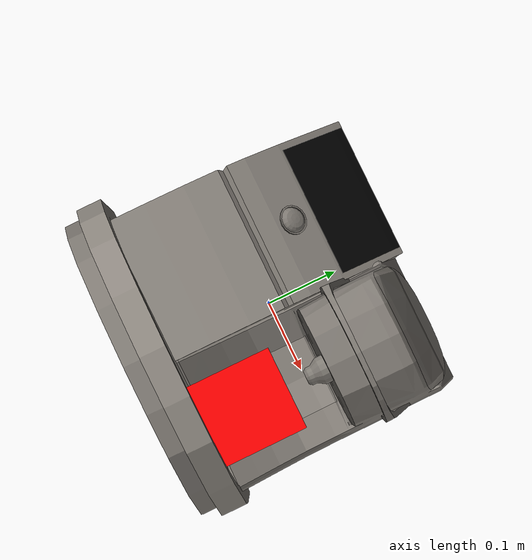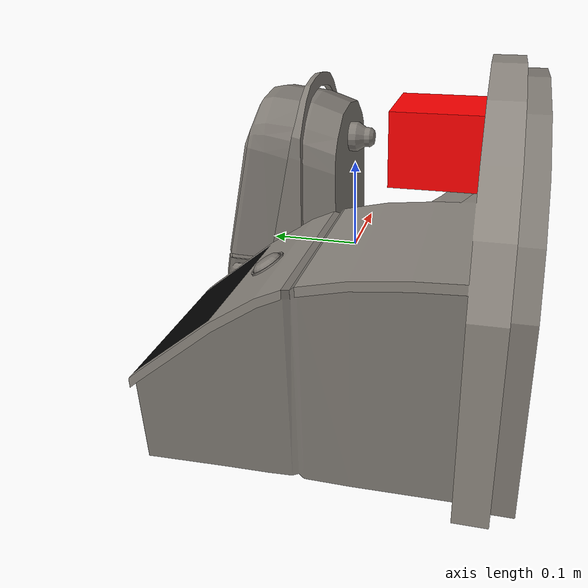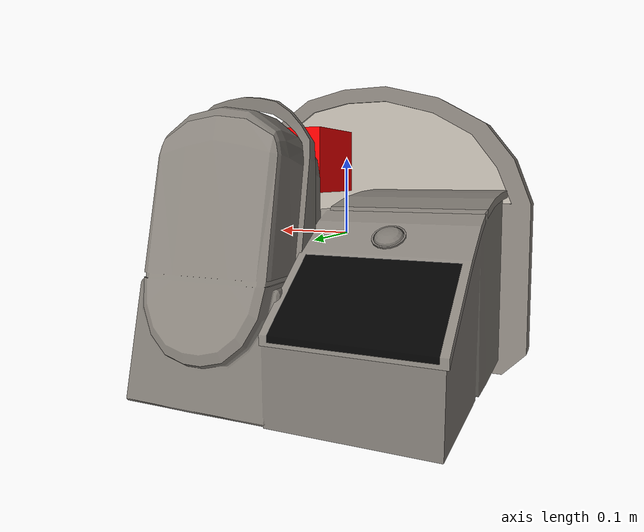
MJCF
<mujoco model="coffee_machine_9">
  <compiler autolimits="true" boundmass="0.01" angle="radian"/>
  <default>
    <default class="/">
      <default class="__VISUAL_MJT__">
        <geom contype="0" conaffinity="0" group="0"/>
      </default>
      <default class="__STRUCTURAL_MJT__">
        <geom contype="8" conaffinity="15" group="4" friction="0.90000000000000002 0.90000000000000002 0.001" solref="0.025000000000000001 1" solimp="0.998 0.998 0.001"/>
      </default>
      <default class="__DYNAMIC_MJT__">
        <geom contype="1" conaffinity="15" group="4" friction="0.90000000000000002 0.90000000000000002 0.001" solref="0.025000000000000001 1" solimp="0.998 0.998 0.001"/>
      </default>
    </default>
  </default>
  <asset>
    <material name="material_coffee_machine_backup_mat" class="/" specular="0.5" shininess="0.5" rgba="0.5 0.5 0.5 1"/>
    <material name="material_Coffee_Machine_Readout_Mat_Off" class="/" specular="0.5" shininess="0.5" rgba="0 0 0 1"/>
    <texture name="Coffee_Machine_Decal_Mat" type="2d" file="Coffee_Machine_Decal_AlbedoTransparency.png"/>
    <material name="material_Coffee_Machine_Decal_Mat" class="/" texture="Coffee_Machine_Decal_Mat" specular="0.5" shininess="0.5" rgba="1 1 1 1"/>
    <texture name="Coffee_Machine_Metal_Mat" type="2d" file="MetalBumpy_AlbedoTransparency.png"/>
    <material name="material_Coffee_Machine_Metal_Mat" class="/" texture="Coffee_Machine_Metal_Mat" specular="0.5" shininess="0.5" rgba="0.66176469999999998 0.66176469999999998 0.66176469999999998 1"/>
    <texture name="Coffee_Machine_Secondary4_Color_Mat" type="2d" file="BrushedIron_AlbedoTransparency.png"/>
    <material name="material_Coffee_Machine_Secondary4_Color_Mat" class="/" texture="Coffee_Machine_Secondary4_Color_Mat" specular="0.5" shininess="0.5" rgba="0.72058820000000001 0.72058820000000001 0.72058820000000001 1"/>
    <texture name="Coffee_Machine_Primary4_Color_Mat" type="2d" file="BumpyPlastic_Albedo.png"/>
    <material name="material_Coffee_Machine_Primary4_Color_Mat" class="/" texture="Coffee_Machine_Primary4_Color_Mat" specular="0.5" shininess="0.5" rgba="0.64705880000000005 0.64705880000000005 0.64705880000000005 1"/>
    <mesh name="coffee_machine_9_coffee_machine_19_0" class="/" file="coffee_machine_9_coffee_machine_19/coffee_machine_9_coffee_machine_19_0.obj" scale="1 1 1"/>
    <mesh name="coffee_machine_9_coffee_machine_19_1" class="/" file="coffee_machine_9_coffee_machine_19/coffee_machine_9_coffee_machine_19_1.obj" scale="1 1 1"/>
    <mesh name="coffee_machine_9_coffee_machine_19_2" class="/" file="coffee_machine_9_coffee_machine_19/coffee_machine_9_coffee_machine_19_2.obj" scale="1 1 1"/>
    <mesh name="coffee_machine_9_coffee_machine_19_3" class="/" file="coffee_machine_9_coffee_machine_19/coffee_machine_9_coffee_machine_19_3.obj" scale="1 1 1"/>
    <mesh name="coffee_machine_9_coffee_machine_19_4" class="/" file="coffee_machine_9_coffee_machine_19/coffee_machine_9_coffee_machine_19_4.obj" scale="1 1 1"/>
    <mesh name="coffee_machine_9_coffee_machine_19_5" class="/" file="coffee_machine_9_coffee_machine_19/coffee_machine_9_coffee_machine_19_5.obj" scale="1 1 1"/>
  </asset>
  <worldbody>
    <body name="coffee_machine_9">
      <joint name="coffee_machine_9_free" class="/" type="free" pos="0 0 0" axis="0 0 1" stiffness="0" range="0 0" armature="0" damping="0.10000000000000001" frictionloss="0"/>
      <body name="coffee_machine_9_coffee_machine_19" pos="-0 -0.21588999983236193 -0.070930000000000007" quat="1 0 0 0">
        <geom name="coffee_machine_9_coffee_machine_19_0" class="__VISUAL_MJT__" type="mesh" material="material_coffee_machine_backup_mat" shellinertia="true" mesh="coffee_machine_9_coffee_machine_19_0"/>
        <geom name="coffee_machine_9_coffee_machine_19_1" class="__VISUAL_MJT__" type="mesh" material="material_Coffee_Machine_Readout_Mat_Off" shellinertia="false" mesh="coffee_machine_9_coffee_machine_19_1"/>
        <geom name="coffee_machine_9_coffee_machine_19_2" class="__VISUAL_MJT__" type="mesh" material="material_Coffee_Machine_Decal_Mat" shellinertia="true" mesh="coffee_machine_9_coffee_machine_19_2"/>
        <geom name="coffee_machine_9_coffee_machine_19_3" class="__VISUAL_MJT__" type="mesh" material="material_Coffee_Machine_Metal_Mat" shellinertia="false" mesh="coffee_machine_9_coffee_machine_19_3"/>
        <geom name="coffee_machine_9_coffee_machine_19_4" class="__VISUAL_MJT__" type="mesh" material="material_Coffee_Machine_Secondary4_Color_Mat" shellinertia="false" mesh="coffee_machine_9_coffee_machine_19_4"/>
        <geom name="coffee_machine_9_coffee_machine_19_5" class="__VISUAL_MJT__" type="mesh" material="material_Coffee_Machine_Primary4_Color_Mat" shellinertia="false" mesh="coffee_machine_9_coffee_machine_19_5"/>
        <site name="coffee_machine_9_Receptacle_0" class="/" type="box" rgba="1 0 0 1" size="0.057059727609157562 0.059733361005783081 0.046861175447702408" pos="0.1120000034570694 0.12813335657119751 0.17139999568462372" quat="1 0 0 0"/>
        <geom name="coffee_machine_9_PrimitiveCollider_0" class="__DYNAMIC_MJT__" type="box" size="0.23734673857688904 0.2083892822265625 0.12826399505138397" rgba="0 1 0 1" pos="-0 0.2083892822265625 -0.021298930048942566" quat="1 0 0 0"/>
        <geom name="coffee_machine_9_PrimitiveCollider_1" class="__DYNAMIC_MJT__" type="box" size="0.10279962420463562 0.077808618545532227 0.13515925407409668" rgba="0 1 0 1" pos="0.11196157336235046 0.31225037574768066 0.092474222183227539" quat="1 0 0 0"/>
        <geom name="coffee_machine_9_PrimitiveCollider_2" class="__DYNAMIC_MJT__" type="box" size="0.22277119755744934 0.032988846302032471 0.18084096908569336" rgba="0 1 0 1" pos="0.0078344643115997314 0.032988846302032471 0.11057472229003906" quat="1 0 0 0"/>
      </body>
    </body>
  </worldbody>
</mujoco>
